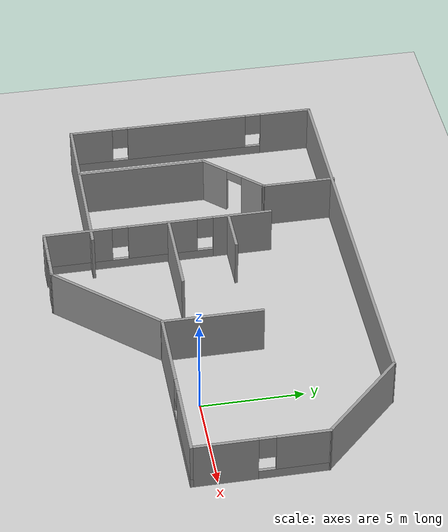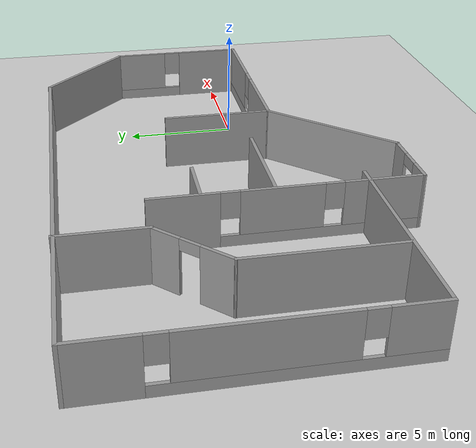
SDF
<sdf version="1.7">
 <world name="default">
  <light name="sun" type="directional">
   <pose>0 0 10 0 -0 0</pose>
   <diffuse>0.8 0.8 0.8 1</diffuse>
   <specular>0.2 0.2 0.2 1</specular>
   <attenuation>
    <range>1000</range>
    <constant>0.9</constant>
    <linear>0.01</linear>
    <quadratic>0.001</quadratic>
   </attenuation>
   <direction>-0.5 0.1 -0.9</direction>
   <spot><inner_angle>0</inner_angle><outer_angle>0</outer_angle><falloff>0</falloff></spot>
  </light>
  <model name="ground_plane">
   <static>1</static>
   <link name="link">
    <collision name="collision">
     <geometry><plane><normal>0 0 1</normal><size>100 100</size></plane></geometry>
     <surface>
      <contact><collide_bitmask>65535</collide_bitmask></contact>
      <friction><ode><mu>100</mu><mu2>50</mu2></ode></friction>
     </surface>
    </collision>
    <visual name="visual">
     <cast_shadows>0</cast_shadows>
     <geometry><plane><normal>0 0 1</normal><size>100 100</size></plane></geometry>
     <material>
      <script><uri>file://media/materials/scripts/gazebo.material</uri><name>Gazebo/Grey</name></script>
     </material>
    </visual>
   </link>
  </model>
  <gravity>0 0 -9.8</gravity>
  <magnetic_field>6e-06 2.3e-05 -4.2e-05</magnetic_field>
  <atmosphere type="adiabatic"/>
  <physics type="ode">
   <max_step_size>0.001</max_step_size>
   <real_time_factor>1</real_time_factor>
   <real_time_update_rate>1000</real_time_update_rate>
  </physics>
  <scene><ambient>0.4 0.4 0.4 1</ambient><background>0.7 0.7 0.7 1</background><shadows>1</shadows></scene>
  <spherical_coordinates>
   <surface_model>EARTH_WGS84</surface_model>
   <latitude_deg>0</latitude_deg>
   <longitude_deg>0</longitude_deg>
   <elevation>0</elevation>
   <heading_deg>0</heading_deg>
  </spherical_coordinates>
  <model name="HSH">
   <pose>-6.77413 1.48168 0 0 -0 0</pose>
   <link name="Wall_1">
    <pose>7.56884 -2.70151 0 0 -0 -4e-05</pose>
    <visual name="Wall_1_Visual_0">
     <pose>-2.27512 0 1.25 0 -0 0</pose>
     <geometry><box><size>4.09033 0.15 2.5</size></box></geometry>
     <material>
      <script><uri>file://media/materials/scripts/gazebo.material</uri><name>Gazebo/Grey</name></script>
      <ambient>1 1 1 1</ambient>
     </material>
     <meta><layer>0</layer></meta>
    </visual>
    <collision name="Wall_1_Collision_0">
     <geometry><box><size>4.09033 0.15 2.5</size></box></geometry>
     <pose>-2.27512 0 1.25 0 -0 0</pose>
    </collision>
    <visual name="Wall_1_Visual_1">
     <pose>2.04516 0 0.25 0 -0 0</pose>
     <geometry><box><size>4.55024 0.15 0.5</size></box></geometry>
     <material>
      <script><uri>file://media/materials/scripts/gazebo.material</uri><name>Gazebo/Grey</name></script>
      <ambient>1 1 1 1</ambient>
     </material>
     <meta><layer>0</layer></meta>
    </visual>
    <collision name="Wall_1_Collision_1">
     <geometry><box><size>4.55024 0.15 0.5</size></box></geometry>
     <pose>2.04516 0 0.25 0 -0 0</pose>
    </collision>
    <visual name="Wall_1_Visual_2">
     <pose>2.44516 0 1.5 0 -0 0</pose>
     <geometry><box><size>3.75024 0.15 2</size></box></geometry>
     <material>
      <script><uri>file://media/materials/scripts/gazebo.material</uri><name>Gazebo/Grey</name></script>
      <ambient>1 1 1 1</ambient>
     </material>
     <meta><layer>0</layer></meta>
    </visual>
    <collision name="Wall_1_Collision_2">
     <geometry><box><size>3.75024 0.15 2</size></box></geometry>
     <pose>2.44516 0 1.5 0 -0 0</pose>
    </collision>
    <visual name="Wall_1_Visual_3">
     <pose>0.170043 0 1.9 0 -0 0</pose>
     <geometry><box><size>0.8 0.15 1.2</size></box></geometry>
     <material>
      <script><uri>file://media/materials/scripts/gazebo.material</uri><name>Gazebo/Grey</name></script>
      <ambient>1 1 1 1</ambient>
     </material>
     <meta><layer>0</layer></meta>
    </visual>
    <collision name="Wall_1_Collision_3">
     <geometry><box><size>0.8 0.15 1.2</size></box></geometry>
     <pose>0.170043 0 1.9 0 -0 0</pose>
    </collision>
   </link>
   <link name="Wall_10">
    <collision name="Wall_10_Collision">
     <geometry><box><size>6.53032 0.15 2.5</size></box></geometry>
     <pose>0 0 1.25 0 -0 0</pose>
    </collision>
    <visual name="Wall_10_Visual">
     <pose>0 0 1.25 0 -0 0</pose>
     <geometry><box><size>6.53032 0.15 2.5</size></box></geometry>
     <material>
      <script><uri>file://media/materials/scripts/gazebo.material</uri><name>Gazebo/Grey</name></script>
      <ambient>1 1 1 1</ambient>
     </material>
     <meta><layer>0</layer></meta>
    </visual>
    <pose>1.19384 -5.07651 0 0 -0 0.839831</pose>
   </link>
   <link name="Wall_12">
    <collision name="Wall_12_Collision">
     <geometry><box><size>5 0.15 2.5</size></box></geometry>
     <pose>0 0 1.25 0 -0 0</pose>
    </collision>
    <visual name="Wall_12_Visual">
     <pose>0 0 1.25 0 -0 0</pose>
     <geometry><box><size>5 0.15 2.5</size></box></geometry>
     <material>
      <script><uri>file://media/materials/scripts/gazebo.material</uri><name>Gazebo/Grey</name></script>
      <ambient>1 1 1 1</ambient>
     </material>
     <meta><layer>0</layer></meta>
    </visual>
    <pose>3.33356 -0.286336 0 0 -0 1.5708</pose>
   </link>
   <link name="Wall_14">
    <collision name="Wall_14_Collision">
     <geometry><box><size>4.5 0.15 2.5</size></box></geometry>
     <pose>0 0 1.25 0 -0 0</pose>
    </collision>
    <visual name="Wall_14_Visual">
     <pose>0 0 1.25 0 -0 0</pose>
     <geometry><box><size>4.5 0.15 2.5</size></box></geometry>
     <material>
      <script><uri>file://media/materials/scripts/gazebo.material</uri><name>Gazebo/Grey</name></script>
      <ambient>1 1 1 1</ambient>
     </material>
     <meta><layer>0</layer></meta>
    </visual>
    <pose>-1.58611 -1.27465 0 0 -0 0</pose>
   </link>
   <link name="Wall_16">
    <collision name="Wall_16_Collision">
     <geometry><box><size>2.25 0.15 2.5</size></box></geometry>
     <pose>0 0 1.25 0 -0 0</pose>
    </collision>
    <visual name="Wall_16_Visual">
     <pose>0 0 1.25 0 -0 0</pose>
     <geometry><box><size>2.25 0.15 2.5</size></box></geometry>
     <material>
      <script><uri>file://media/materials/scripts/gazebo.material</uri><name>Gazebo/Grey</name></script>
      <ambient>1 1 1 1</ambient>
     </material>
     <meta><layer>0</layer></meta>
    </visual>
    <pose>-2.73111 1.74535 0 0 -0 0</pose>
   </link>
   <link name="Wall_19">
    <collision name="Wall_19_Collision">
     <geometry><box><size>5.5 0.15 2.5</size></box></geometry>
     <pose>0 0 1.25 0 -0 0</pose>
    </collision>
    <visual name="Wall_19_Visual">
     <pose>0 0 1.25 0 -0 0</pose>
     <geometry><box><size>5.5 0.15 2.5</size></box></geometry>
     <material>
      <script><uri>file://media/materials/scripts/gazebo.material</uri><name>Gazebo/Grey</name></script>
      <ambient>1 1 1 1</ambient>
     </material>
     <meta><layer>0</layer></meta>
    </visual>
    <pose>9.92262 5.53983 0 0 -0 2.35619</pose>
   </link>
   <link name="Wall_2">
    <pose>11.8141 0.473323 0 0 -0 1.5708</pose>
    <visual name="Wall_2_Visual_0">
     <pose>-1.6773 0 1.25 0 -0 0</pose>
     <geometry><box><size>3.1454 0.15 2.5</size></box></geometry>
     <material>
      <script><uri>file://media/materials/scripts/gazebo.material</uri><name>Gazebo/Grey</name></script>
      <ambient>1 1 1 1</ambient>
     </material>
     <meta><layer>0</layer></meta>
    </visual>
    <collision name="Wall_2_Collision_0">
     <geometry><box><size>3.1454 0.15 2.5</size></box></geometry>
     <pose>-1.6773 0 1.25 0 -0 0</pose>
    </collision>
    <visual name="Wall_2_Visual_1">
     <pose>1.5727 0 0.25 0 -0 0</pose>
     <geometry><box><size>3.3546 0.15 0.5</size></box></geometry>
     <material>
      <script><uri>file://media/materials/scripts/gazebo.material</uri><name>Gazebo/Grey</name></script>
      <ambient>1 1 1 1</ambient>
     </material>
     <meta><layer>0</layer></meta>
    </visual>
    <collision name="Wall_2_Collision_1">
     <geometry><box><size>3.3546 0.15 0.5</size></box></geometry>
     <pose>1.5727 0 0.25 0 -0 0</pose>
    </collision>
    <visual name="Wall_2_Visual_2">
     <pose>1.9727 0 1.5 0 -0 0</pose>
     <geometry><box><size>2.55461 0.15 2</size></box></geometry>
     <material>
      <script><uri>file://media/materials/scripts/gazebo.material</uri><name>Gazebo/Grey</name></script>
      <ambient>1 1 1 1</ambient>
     </material>
     <meta><layer>0</layer></meta>
    </visual>
    <collision name="Wall_2_Collision_2">
     <geometry><box><size>2.55461 0.15 2</size></box></geometry>
     <pose>1.9727 0 1.5 0 -0 0</pose>
    </collision>
    <visual name="Wall_2_Visual_3">
     <pose>0.295395 0 1.9 0 -0 0</pose>
     <geometry><box><size>0.8 0.15 1.2</size></box></geometry>
     <material>
      <script><uri>file://media/materials/scripts/gazebo.material</uri><name>Gazebo/Grey</name></script>
      <ambient>1 1 1 1</ambient>
     </material>
     <meta><layer>0</layer></meta>
    </visual>
    <collision name="Wall_2_Collision_3">
     <geometry><box><size>0.8 0.15 1.2</size></box></geometry>
     <pose>0.295395 0 1.9 0 -0 0</pose>
    </collision>
   </link>
   <link name="Wall_20">
    <collision name="Wall_20_Collision">
     <geometry><box><size>20.0263 0.15 2.5</size></box></geometry>
     <pose>0 0 1.25 0 -0 0</pose>
    </collision>
    <visual name="Wall_20_Visual">
     <pose>0 0 1.25 0 -0 0</pose>
     <geometry><box><size>20.0263 0.15 2.5</size></box></geometry>
     <material>
      <script><uri>file://media/materials/scripts/gazebo.material</uri><name>Gazebo/Grey</name></script>
      <ambient>1 1 1 1</ambient>
     </material>
     <meta><layer>0</layer></meta>
    </visual>
    <pose>-1.90704 7.43134 0 0 -0 3.14159</pose>
   </link>
   <link name="Wall_21">
    <pose>-11.8452 1.13135 0 0 -0 -1.5708</pose>
    <visual name="Wall_21_Visual_0">
     <pose>-5.03477 0 1.25 0 -0 0</pose>
     <geometry><box><size>2.68046 0.15 2.5</size></box></geometry>
     <material>
      <script><uri>file://media/materials/scripts/gazebo.material</uri><name>Gazebo/Grey</name></script>
      <ambient>1 1 1 1</ambient>
     </material>
     <meta><layer>0</layer></meta>
    </visual>
    <collision name="Wall_21_Collision_0">
     <geometry><box><size>2.68046 0.15 2.5</size></box></geometry>
     <pose>-5.03477 0 1.25 0 -0 0</pose>
    </collision>
    <visual name="Wall_21_Visual_1">
     <pose>1.34023 0 0.25 0 -0 0</pose>
     <geometry><box><size>10.0695 0.15 0.5</size></box></geometry>
     <material>
      <script><uri>file://media/materials/scripts/gazebo.material</uri><name>Gazebo/Grey</name></script>
      <ambient>1 1 1 1</ambient>
     </material>
     <meta><layer>0</layer></meta>
    </visual>
    <collision name="Wall_21_Collision_1">
     <geometry><box><size>10.0695 0.15 0.5</size></box></geometry>
     <pose>1.34023 0 0.25 0 -0 0</pose>
    </collision>
    <visual name="Wall_21_Visual_2">
     <pose>0.233886 0 1.5 0 -0 0</pose>
     <geometry><box><size>6.25686 0.15 2</size></box></geometry>
     <material>
      <script><uri>file://media/materials/scripts/gazebo.material</uri><name>Gazebo/Grey</name></script>
      <ambient>1 1 1 1</ambient>
     </material>
     <meta><layer>0</layer></meta>
    </visual>
    <collision name="Wall_21_Collision_2">
     <geometry><box><size>6.25686 0.15 2</size></box></geometry>
     <pose>0.233886 0 1.5 0 -0 0</pose>
    </collision>
    <visual name="Wall_21_Visual_3">
     <pose>5.26866 0 1.5 0 -0 0</pose>
     <geometry><box><size>2.21268 0.15 2</size></box></geometry>
     <material>
      <script><uri>file://media/materials/scripts/gazebo.material</uri><name>Gazebo/Grey</name></script>
      <ambient>1 1 1 1</ambient>
     </material>
     <meta><layer>0</layer></meta>
    </visual>
    <collision name="Wall_21_Collision_3">
     <geometry><box><size>2.21268 0.15 2</size></box></geometry>
     <pose>5.26866 0 1.5 0 -0 0</pose>
    </collision>
    <visual name="Wall_21_Visual_4">
     <pose>-3.29454 0 1.9 0 -0 0</pose>
     <geometry><box><size>0.8 0.15 1.2</size></box></geometry>
     <material>
      <script><uri>file://media/materials/scripts/gazebo.material</uri><name>Gazebo/Grey</name></script>
      <ambient>1 1 1 1</ambient>
     </material>
     <meta><layer>0</layer></meta>
    </visual>
    <collision name="Wall_21_Collision_4">
     <geometry><box><size>0.8 0.15 1.2</size></box></geometry>
     <pose>-3.29454 0 1.9 0 -0 0</pose>
    </collision>
    <visual name="Wall_21_Visual_5">
     <pose>3.76232 0 1.9 0 -0 0</pose>
     <geometry><box><size>0.8 0.15 1.2</size></box></geometry>
     <material>
      <script><uri>file://media/materials/scripts/gazebo.material</uri><name>Gazebo/Grey</name></script>
      <ambient>1 1 1 1</ambient>
     </material>
     <meta><layer>0</layer></meta>
    </visual>
    <collision name="Wall_21_Collision_5">
     <geometry><box><size>0.8 0.15 1.2</size></box></geometry>
     <pose>3.76232 0 1.9 0 -0 0</pose>
    </collision>
   </link>
   <link name="Wall_22">
    <collision name="Wall_22_Collision">
     <geometry><box><size>8.75 0.15 2.5</size></box></geometry>
     <pose>0 0 1.25 0 -0 0</pose>
    </collision>
    <visual name="Wall_22_Visual">
     <pose>0 0 1.25 0 -0 0</pose>
     <geometry><box><size>8.75 0.15 2.5</size></box></geometry>
     <material>
      <script><uri>file://media/materials/scripts/gazebo.material</uri><name>Gazebo/Grey</name></script>
      <ambient>1 1 1 1</ambient>
     </material>
     <meta><layer>0</layer></meta>
    </visual>
    <pose>-7.53204 -5.16866 0 0 -0 0</pose>
   </link>
   <link name="Wall_24">
    <pose>-7.17881 2.5799 0 0 -0 0.81236</pose>
    <visual name="Wall_24_Visual_0">
     <pose>-1.14034 0 1.25 0 -0 0</pose>
     <geometry><box><size>1.54137 0.15 2.5</size></box></geometry>
     <material>
      <script><uri>file://media/materials/scripts/gazebo.material</uri><name>Gazebo/Grey</name></script>
      <ambient>1 1 1 1</ambient>
     </material>
     <meta><layer>0</layer></meta>
    </visual>
    <collision name="Wall_24_Collision_0">
     <geometry><box><size>1.54137 0.15 2.5</size></box></geometry>
     <pose>-1.14034 0 1.25 0 -0 0</pose>
    </collision>
    <visual name="Wall_24_Visual_1">
     <pose>1.22068 0 1.25 0 -0 0</pose>
     <geometry><box><size>1.38068 0.15 2.5</size></box></geometry>
     <material>
      <script><uri>file://media/materials/scripts/gazebo.material</uri><name>Gazebo/Grey</name></script>
      <ambient>1 1 1 1</ambient>
     </material>
     <meta><layer>0</layer></meta>
    </visual>
    <collision name="Wall_24_Collision_1">
     <geometry><box><size>1.38068 0.15 2.5</size></box></geometry>
     <pose>1.22068 0 1.25 0 -0 0</pose>
    </collision>
    <visual name="Wall_24_Visual_2">
     <pose>0.080343 0 2.25 0 -0 0</pose>
     <geometry><box><size>0.9 0.15 0.5</size></box></geometry>
     <material>
      <script><uri>file://media/materials/scripts/gazebo.material</uri><name>Gazebo/Grey</name></script>
      <ambient>1 1 1 1</ambient>
     </material>
     <meta><layer>0</layer></meta>
    </visual>
    <collision name="Wall_24_Collision_2">
     <geometry><box><size>0.9 0.15 0.5</size></box></geometry>
     <pose>0.080343 0 2.25 0 -0 0</pose>
    </collision>
   </link>
   <link name="Wall_29">
    <collision name="Wall_29_Collision">
     <geometry><box><size>6.5 0.15 2.5</size></box></geometry>
     <pose>0 0 1.25 0 -0 0</pose>
    </collision>
    <visual name="Wall_29_Visual">
     <pose>0 0 1.25 0 -0 0</pose>
     <geometry><box><size>6.5 0.15 2.5</size></box></geometry>
     <material>
      <script><uri>file://media/materials/scripts/gazebo.material</uri><name>Gazebo/Grey</name></script>
      <ambient>1 1 1 1</ambient>
     </material>
     <meta><layer>0</layer></meta>
    </visual>
    <pose>-8.4416 -1.92789 0 0 -0 -1.5708</pose>
   </link>
   <link name="Wall_33">
    <collision name="Wall_33_Collision">
     <geometry><box><size>3.75 0.15 2.5</size></box></geometry>
     <pose>0 0 1.25 0 -0 0</pose>
    </collision>
    <visual name="Wall_33_Visual">
     <pose>0 0 1.25 0 -0 0</pose>
     <geometry><box><size>3.75 0.15 2.5</size></box></geometry>
     <material>
      <script><uri>file://media/materials/scripts/gazebo.material</uri><name>Gazebo/Grey</name></script>
      <ambient>1 1 1 1</ambient>
     </material>
     <meta><layer>0</layer></meta>
    </visual>
    <pose>-5.91602 5.69269 0 0 -0 1.5708</pose>
   </link>
   <link name="Wall_4">
    <pose>-3.88094 -1.81949 0 0 -0 -1.56814</pose>
    <visual name="Wall_4_Visual_0">
     <pose>-4.2599 0 1.25 0 -0 0</pose>
     <geometry><box><size>2.97461 0.15 2.5</size></box></geometry>
     <material>
      <script><uri>file://media/materials/scripts/gazebo.material</uri><name>Gazebo/Grey</name></script>
      <ambient>1 1 1 1</ambient>
     </material>
     <meta><layer>0</layer></meta>
    </visual>
    <collision name="Wall_4_Collision_0">
     <geometry><box><size>2.97461 0.15 2.5</size></box></geometry>
     <pose>-4.2599 0 1.25 0 -0 0</pose>
    </collision>
    <visual name="Wall_4_Visual_1">
     <pose>1.4873 0 0.25 0 -0 0</pose>
     <geometry><box><size>8.5198 0.15 0.5</size></box></geometry>
     <material>
      <script><uri>file://media/materials/scripts/gazebo.material</uri><name>Gazebo/Grey</name></script>
      <ambient>1 1 1 1</ambient>
     </material>
     <meta><layer>0</layer></meta>
    </visual>
    <collision name="Wall_4_Collision_1">
     <geometry><box><size>8.5198 0.15 0.5</size></box></geometry>
     <pose>1.4873 0 0.25 0 -0 0</pose>
    </collision>
    <visual name="Wall_4_Visual_2">
     <pose>-0.231556 0 1.5 0 -0 0</pose>
     <geometry><box><size>3.48208 0.15 2</size></box></geometry>
     <material>
      <script><uri>file://media/materials/scripts/gazebo.material</uri><name>Gazebo/Grey</name></script>
      <ambient>1 1 1 1</ambient>
     </material>
     <meta><layer>0</layer></meta>
    </visual>
    <collision name="Wall_4_Collision_2">
     <geometry><box><size>3.48208 0.15 2</size></box></geometry>
     <pose>-0.231556 0 1.5 0 -0 0</pose>
    </collision>
    <visual name="Wall_4_Visual_3">
     <pose>4.02834 0 1.5 0 -0 0</pose>
     <geometry><box><size>3.43772 0.15 2</size></box></geometry>
     <material>
      <script><uri>file://media/materials/scripts/gazebo.material</uri><name>Gazebo/Grey</name></script>
      <ambient>1 1 1 1</ambient>
     </material>
     <meta><layer>0</layer></meta>
    </visual>
    <collision name="Wall_4_Collision_3">
     <geometry><box><size>3.43772 0.15 2</size></box></geometry>
     <pose>4.02834 0 1.5 0 -0 0</pose>
    </collision>
    <visual name="Wall_4_Visual_4">
     <pose>-2.3726 0 1.9 0 -0 0</pose>
     <geometry><box><size>0.8 0.15 1.2</size></box></geometry>
     <material>
      <script><uri>file://media/materials/scripts/gazebo.material</uri><name>Gazebo/Grey</name></script>
      <ambient>1 1 1 1</ambient>
     </material>
     <meta><layer>0</layer></meta>
    </visual>
    <collision name="Wall_4_Collision_4">
     <geometry><box><size>0.8 0.15 1.2</size></box></geometry>
     <pose>-2.3726 0 1.9 0 -0 0</pose>
    </collision>
    <visual name="Wall_4_Visual_5">
     <pose>1.90949 0 1.9 0 -0 0</pose>
     <geometry><box><size>0.8 0.15 1.2</size></box></geometry>
     <material>
      <script><uri>file://media/materials/scripts/gazebo.material</uri><name>Gazebo/Grey</name></script>
      <ambient>1 1 1 1</ambient>
     </material>
     <meta><layer>0</layer></meta>
    </visual>
    <collision name="Wall_4_Collision_5">
     <geometry><box><size>0.8 0.15 1.2</size></box></geometry>
     <pose>1.90949 0 1.9 0 -0 0</pose>
    </collision>
   </link>
   <link name="Wall_9">
    <pose>-2.40087 -7.47168 0 0 -0 0.013651</pose>
    <visual name="Wall_9_Visual_0">
     <pose>-1.00324 0 1.25 0 -0 0</pose>
     <geometry><box><size>1.0736 0.15 2.5</size></box></geometry>
     <material>
      <script><uri>file://media/materials/scripts/gazebo.material</uri><name>Gazebo/Grey</name></script>
      <ambient>1 1 1 1</ambient>
     </material>
     <meta><layer>0</layer></meta>
    </visual>
    <collision name="Wall_9_Collision_0">
     <geometry><box><size>1.0736 0.15 2.5</size></box></geometry>
     <pose>-1.00324 0 1.25 0 -0 0</pose>
    </collision>
    <visual name="Wall_9_Visual_1">
     <pose>0.986798 0 1.25 0 -0 0</pose>
     <geometry><box><size>1.10647 0.15 2.5</size></box></geometry>
     <material>
      <script><uri>file://media/materials/scripts/gazebo.material</uri><name>Gazebo/Grey</name></script>
      <ambient>1 1 1 1</ambient>
     </material>
     <meta><layer>0</layer></meta>
    </visual>
    <collision name="Wall_9_Collision_1">
     <geometry><box><size>1.10647 0.15 2.5</size></box></geometry>
     <pose>0.986798 0 1.25 0 -0 0</pose>
    </collision>
    <visual name="Wall_9_Visual_2">
     <pose>-0.016437 0 2.25 0 -0 0</pose>
     <geometry><box><size>0.9 0.15 0.5</size></box></geometry>
     <material>
      <script><uri>file://media/materials/scripts/gazebo.material</uri><name>Gazebo/Grey</name></script>
      <ambient>1 1 1 1</ambient>
     </material>
     <meta><layer>0</layer></meta>
    </visual>
    <collision name="Wall_9_Collision_2">
     <geometry><box><size>0.9 0.15 0.5</size></box></geometry>
     <pose>-0.016437 0 2.25 0 -0 0</pose>
    </collision>
   </link>
   <static>1</static>
  </model>
 </world>
</sdf>
